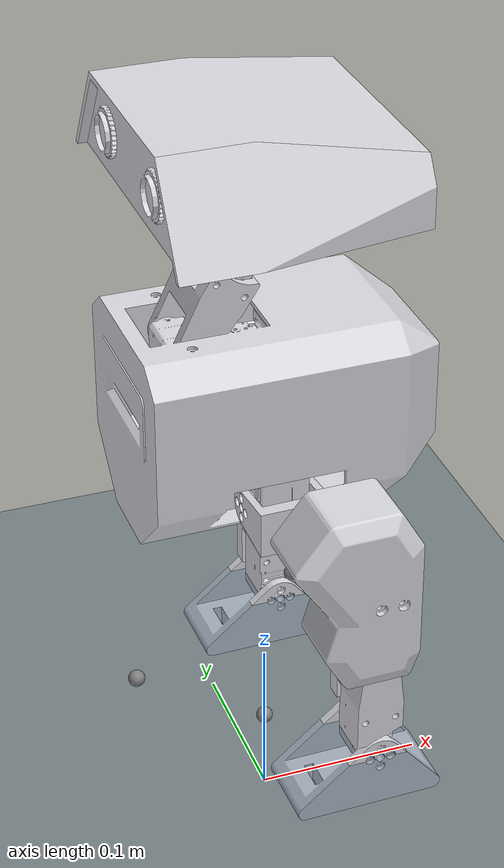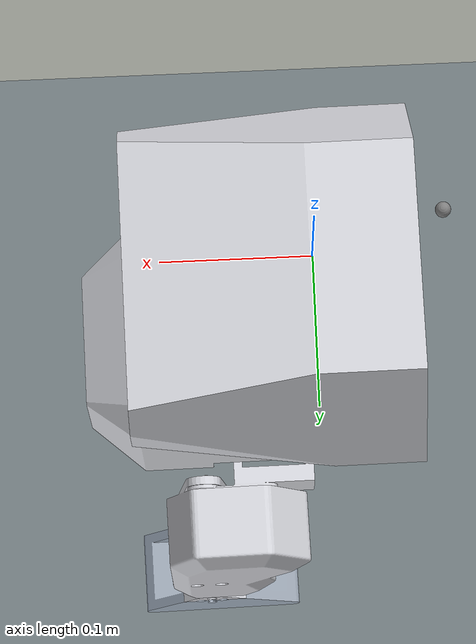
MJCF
<mujoco model="scene">
    <include file="full_assembly_v2.mujoco.xml"/>

    <visual>
        <headlight diffuse="0.6 0.6 0.6" ambient="0.3 0.3 0.3" specular="0 0 0"/>
        <rgba haze="0.15 0.25 0.35 1"/>
        <global azimuth="160" elevation="-20"/>
    </visual>

    <asset>
        <texture name="tex-checker" type="2d" builtin="checker" width="512" height="512" rgb1="0.1216 0.2431 0.3569" rgb2="0.2431 0.3569 0.4824" mark="edge" markrgb="0.80 0.80 0.80"/>
        <material name="mat-checker" texture="tex-checker" texrepeat="5 5" reflectance="0.2"/>
    </asset>

    <worldbody>
        <body name="floor">
            <geom name="floor" size="0 0 0.01" type="plane" material="mat-checker" contype="1" conaffinity="0"
                priority="1" friction="0.6" condim="3"/>
        </body>
    </worldbody>
    <keyframe>
        <key name="home"
            qpos="
    0 0 0.15
    1 0 0 0
      0.002
        0.053
        -0.63
        1.368
        -0.784
        -0.003
        -0.065
        0.635
        1.379
        -0.796
"
            ctrl="
          0.002
        0.053
        -0.63
        1.368
        -0.784
        -0.003
        -0.065
        0.635
        1.379
        -0.796
          "/>
    </keyframe>
</mujoco>

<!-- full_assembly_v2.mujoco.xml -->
<mujoco model="full_assembly_v2">

  <sensor>
    <gyro site="imu" name="gyro"/>
    <velocimeter site="imu" name="local_linvel"/>
    <accelerometer site="imu" name="accelerometer"/>
    <framezaxis objtype="site" objname="imu" name="upvector"/>
    <framexaxis objtype="site" objname="imu" name="forwardvector"/>
    <framelinvel objtype="site" objname="imu" name="global_linvel"/>
    <frameangvel objtype="site" objname="imu" name="global_angvel"/>
    <framepos objtype="site" objname="imu" name="position"/>
    <framequat objtype="site" objname="imu" name="orientation"/>
    <framelinvel objtype="site" objname="right_foot" name="right_foot_global_linvel"/>
    <framelinvel objtype="site" objname="left_foot" name="left_foot_global_linvel"/>
    <framexaxis objtype="site" objname="left_foot" name="left_foot_upvector"/>
    <framexaxis objtype="site" objname="right_foot" name="right_foot_upvector"/>
    <framepos objtype="site" objname="left_foot" name="left_foot_pos"/>
    <framepos objtype="site" objname="right_foot" name="right_foot_pos"/>
  </sensor>
  <default>
    <default class="motor">
      <joint damping="1.05" frictionloss="0.195" armature="0.032"/>
      <position kp="46.3" kv="0.0" forcerange="-8.53 8.53"/>
      <default class="visual">
        <geom type="mesh" contype="0" conaffinity="0" group="2" />
      </default>
      <default class="collision">
        <geom group="3" />
      </default>
    </default>
  </default>

  <compiler angle="radian" />

  <asset>
    <material name="empty" rgba="0.847 0.851 0.875 1" />
    <material name="collision_material" rgba="0.847 0.851 0.875 1" />
    <mesh name="base_link.STL" file="assets/base_link.STL" />
    <mesh name="pelvis_L.STL" file="assets/pelvis_L.STL" />
    <mesh name="hip_L.STL" file="assets/hip_L.STL" />
    <mesh name="thigh_L.STL" file="assets/thigh_L.STL" />
    <mesh name="ankle_L.STL" file="assets/ankle_L.STL" />
    <mesh name="foot_L.STL" file="assets/foot_L.STL" />
    <mesh name="pelvis_R.STL" file="assets/pelvis_R.STL" />
    <mesh name="hip_R.STL" file="assets/hip_R.STL" />
    <mesh name="thigh_R.STL" file="assets/thigh_R.STL" />
    <mesh name="ankle_R.STL" file="assets/ankle_R.STL" />
    <mesh name="foot_R.STL" file="assets/foot_R.STL" />
    <mesh name="neck.STL" file="assets/neck.STL" />
    <mesh name="head.STL" file="assets/head.STL" />
  </asset>

  <worldbody>

    <body name="trunk_assembly" pos="0.00000000 0.00000000 0.05263840" quat="1 0 0 0" childclass="motor">
      <site name="imu" pos="-0.08 -0.0 0.05"/>
      <freejoint name="floating_base" />
      <geom name="base_link_visual" pos="0 0 0" quat="1.0 0.0 0.0 0.0" material="empty" type="mesh" mesh="base_link.STL" class="visual" />
      <body name="pelvis_L" pos="0.033675 0.068612 0.09725" quat="0.707078559003656 0.7070811562529976 0.006170500342410927 0.006170477676939206">
        <joint name="left_hip_yaw"  class="motor" axis="0 -1 0" />
        <inertial pos="-0.000515821082482874 0.0280203001661152 -0.000118521611499556" quat="1.0 0.0 0.0 0.0" mass="0.053918886421864" diaginertia="9.40172868937262e-06 5.82011210755033e-06 8.64087999526507e-06" />
        <geom name="pelvis_L_visual" pos="0 0 0" quat="1.0 0.0 0.0 0.0" material="empty" type="mesh" mesh="pelvis_L.STL" class="visual" />
        <body name="hip_L" pos="0 0.01 0" quat="1.0 0.0 0.0 0.0">
          <joint name="left_hip_roll"  class="motor" axis="-0.99996 0 0.0087265" />
          <inertial pos="0.0163927399253099 -6.26883108745535E-05 0.0429518547389871" quat="1.0 0.0 0.0 0.0" mass="0.0761461040659691" diaginertia="1.79303621308344e-05 2.59794268953297e-05 1.70542740636146e-05" />
          <geom name="hip_L_visual" pos="0 0 0" quat="1.0 0.0 0.0 0.0" material="empty" type="mesh" mesh="hip_L.STL" class="visual" />
          <body name="thigh_L" pos="0.041492 0.0001117 0.024957" quat="0.7071054825112363 0.0 0.0 0.7071080798594735">
            <joint name="left_hip_pitch"  class="motor" axis="0 0 -1" />
            <inertial pos="-0.0395824766086597 0.0051336618268176 0.0321475415340156" quat="1.0 0.0 0.0 0.0" mass="0.136722260006395" diaginertia="6.66154088319108e-05 5.70155602172065e-05 7.80651315888766e-05" />
            <geom name="thigh_L_visual" pos="0 0 0" quat="1.0 0.0 0.0 0.0" material="empty" type="mesh" mesh="thigh_L.STL" class="visual" />
            <body name="ankle_L" pos="-0.08 0 0.00091912" quat="1.0 0.0 0.0 0.0">
              <joint name="left_knee" class="motor" axis="0 0 -1" />
              <inertial pos="-0.0512148624990723 0.000164903632732805 0.0240133161649936" quat="1.0 0.0 0.0 0.0" mass="0.078372120714946" diaginertia="1.46395230049244e-05 2.33737111178945e-05 1.75499317087815e-05" />
              <geom name="ankle_L_visual" pos="0 0 0" quat="1.0 0.0 0.0 0.0" material="empty" type="mesh" mesh="ankle_L.STL" class="visual" />
              <body name="foot_L" pos="-0.08 0 0" quat="0.7071054825112363 0.0 0.0 0.7071080798594735">
                <joint name="left_ankle"  class="motor" axis="0 0 -1" />
                <inertial pos="0.00575759314533464 0.0248407158750149 0.0240910582815914" quat="1.0 0.0 0.0 0.0" mass="0.0777097222802103" diaginertia="2.96195805200132e-05 7.15756259940464e-05 5.79961491525299e-05" />
                <geom name="foot_L_collision" pos="0 0 0" quat="1.0 0.0 0.0 0.0" type="mesh" mesh="foot_L.STL" class="collision" />
                <geom name="foot_L_visual" pos="0 0 0" quat="1.0 0.0 0.0 0.0" material="empty" type="mesh" mesh="foot_L.STL" class="visual" />
                <site group="0" name="left_foot" pos="0.0005 -0.036225 0.01955"
                    quat="0.707107 -0.707107 -0 1.72494e-18"/>
              </body>
            </body>
          </body>
        </body>
      </body>
      <body name="pelvis_R" pos="0.033675 0.14789 0.09725" quat="0.707078559003656 0.7070811562529976 0.006170500342410927 0.006170477676939206">
        <joint name="right_hip_yaw"  class="motor" axis="0 1 0" />
        <inertial pos="-0.000513725157831289 0.028020300168359 -0.000121646690343313" quat="1.0 0.0 0.0 0.0" mass="0.0539188864990521" diaginertia="9.4017418811931e-06 5.82011205621139e-06 8.64086678471779e-06" />
        <geom name="pelvis_R_visual" pos="0 0 0" quat="1.0 0.0 0.0 0.0" material="empty" type="mesh" mesh="pelvis_R.STL" class="visual" />
        <body name="hip_R" pos="0 0.01 0" quat="1.0 0.0 0.0 0.0">
          <joint name="right_hip_roll"  class="motor" axis="0.99996 0 0.0087265" />
          <inertial pos="0.0163927365148243 0.000107382823878358 -0.0429518548985343" quat="1.0 0.0 0.0 0.0" mass="0.0761461103489311" diaginertia="1.79303664915726e-05 2.59794266113192e-05 1.70542750917573e-05" />
          <geom name="hip_R_visual" pos="0 0 0" quat="1.0 0.0 0.0 0.0" material="empty" type="mesh" mesh="hip_R.STL" class="visual" />
          <body name="thigh_R" pos="0.041492 0.0001117 -0.024957" quat="1.0 0.0 0.0 0.0">
            <joint name="right_hip_pitch"  class="motor" axis="0 0 1" />
            <inertial pos="-0.00503057541754896 -0.0395824759727279 -0.0321475418846951" quat="1.0 0.0 0.0 0.0" mass="0.136722260636535" diaginertia="5.70155593756611e-05 6.66154112342343e-05 7.80651316048262e-05" />
            <geom name="thigh_R_visual" pos="0 0 0" quat="1.0 0.0 0.0 0.0" material="empty" type="mesh" mesh="thigh_R.STL" class="visual" />
            <body name="ankle_R" pos="0 -0.08 -2.0357E-05" quat="0.8191321052435676 0.0 0.0 0.5736049112056493">
              <joint name="right_knee" class="motor" axis="0 0 1"/>
              <inertial pos="-0.048127946856073 -0.0175117923791769 -0.0249120745182509" quat="1.0 0.0 0.0 0.0" mass="0.0783721207149456" diaginertia="1.5516073379062e-05 2.24971607437542e-05 1.75499317087841e-05" />
              <geom name="ankle_R_visual" pos="0 0 0" quat="1.0 0.0 0.0 0.0" material="empty" type="mesh" mesh="ankle_R.STL" class="visual" />
              <body name="foot_R" pos="-0.075175 -0.027362 0" quat="0.5736019023615503 0.0 0.0 0.8191342122065287">
                <joint name="right_ankle"  class="motor" axis="0 0 1" />
                <inertial pos="0.00575759314533454 0.0248407158750349 -0.0250299315416568" quat="1.0 0.0 0.0 0.0" mass="0.0777097222802103" diaginertia="2.96195805200131e-05 7.15756259940462e-05 5.79961491525299e-05" />
                <geom name="foot_R_collision" pos="0 0 0" quat="1.0 0.0 0.0 0.0" type="mesh" mesh="foot_R.STL" class="collision" />
                <geom name="foot_R_visual" pos="0 0 0" quat="1.0 0.0 0.0 0.0" material="empty" type="mesh" mesh="foot_R.STL" class="visual" />
                <site group="0" name="right_foot" pos="0.0005 -0.036225 0.01955"
                    quat="0.707107 -0.707107 -0 1.26645e-25"/>
              </body>
            </body>
          </body>
        </body>
      </body>
      <body name="neck" pos="-0.017718 0.084586 0.20587" quat="0.701085015865724 0.6993715995377041 0.09838460418272775 -0.09838514089250666">
        <inertial pos="0.0142670069788498 0.0483510224068891 -0.0237857394184724" quat="1.0 0.0 0.0 0.0" mass="0.0794977634701646" diaginertia="2.28330069305103e-05 1.57377455778983e-05 1.74603083901075e-05" />
        <geom name="neck_visual" pos="0 0 0" quat="1.0 0.0 0.0 0.0" material="empty" type="mesh" mesh="neck.STL" class="visual" />
        <body name="head" pos="0.022822 0.076675 -0.00019917" quat="0.9902723673499829 0.0012142608143731455 -1.142363968258944e-09 0.13913721297242898">
          <inertial pos="0.00446267654175821 0.0533829385889319 -0.0231122946337488" quat="1.0 0.0 0.0 0.0" mass="0.250" diaginertia="0.00352706153202255 0.00567911515594764 0.0028890727523189" />
          <geom name="head_visual" pos="0 0 0" quat="1.0 0.0 0.0 0.0" material="empty" type="mesh" mesh="head.STL" class="visual" />
        </body>
      </body>
      <site name="base_link_site" pos="0 0 0" quat="1 0 0 0" />
      <camera name="front_camera" mode="track" fovy="90.0" quat="4.329637285359678e-17 4.329637285359677e-17 0.7071067811865475 0.7071067811865476" pos="0.0 2.0 0.5" />
      <camera name="side_camera" mode="track" fovy="90.0" quat="-0.5 -0.4999999999999999 0.5 0.5000000000000001" pos="-2.0 0.0 0.5" />
    </body>
  </worldbody>

  <actuator>
    <position name="left_hip_yaw" joint="left_hip_yaw" class="motor" />
    <position name="left_hip_roll" joint="left_hip_roll" class="motor" />
    <position name="left_hip_pitch" joint="left_hip_pitch" class="motor" />
    <position name="left_knee" joint="left_knee" class="motor" ctrlrange="-1.57 0" />
    <position name="left_ankle" joint="left_ankle" class="motor" />
    <position name="right_hip_yaw" joint="right_hip_yaw" class="motor" />
    <position name="right_hip_roll" joint="right_hip_roll" class="motor" />
    <position name="right_hip_pitch" joint="right_hip_pitch" class="motor" />
    <position name="right_knee" joint="right_knee" class="motor" ctrlrange="-1.57 0" />
    <position name="right_ankle" joint="right_ankle" class="motor" />
  </actuator>

</mujoco>
